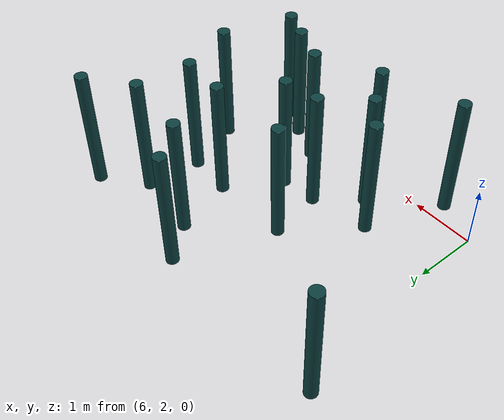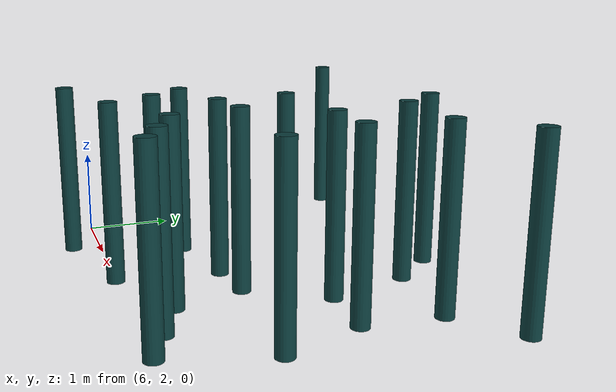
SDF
<sdf version="1.6">
 <world name="default">
  <model name="obstacle">
   <link name="link">
    <inertial>
     <mass>112.569</mass>
     <inertia><ixx>33.2512</ixx><ixy>0</ixy><ixz>0</ixz><iyy>33.2512</iyy><iyz>0</iyz><izz>0.537779</izz></inertia>
    </inertial>
    <visual name="visual">
     <geometry><cylinder><radius>0.1</radius><length>2</length></cylinder></geometry>
     <material>
      <script><name>Gazebo/Grey</name><uri>file://media/materials/scripts/gazebo.material</uri></script>
      <shader type="pixel"><normal_map>__default__</normal_map></shader>
      <ambient>0.05 0.25 0.25 1</ambient>
      <diffuse>0.3 0.3 0.3 1</diffuse>
      <specular>0.01 0.01 0.01 1</specular>
      <emissive>0.1 0.1 0.1 1</emissive>
      <lighting>1</lighting>
     </material>
    </visual>
    <collision name="collision">
     <geometry><cylinder><radius>0.097748</radius><length>1.87509</length></cylinder></geometry>
     <surface>
      <friction>
       <ode><mu>1</mu><mu2>1</mu2><fdir1>0 0 0</fdir1><slip1>0</slip1><slip2>0</slip2></ode>
       <torsional>
        <coefficient>1</coefficient>
        <patch_radius>0</patch_radius>
        <surface_radius>0</surface_radius>
        <use_patch_radius>1</use_patch_radius>
        <ode><slip>0</slip></ode>
       </torsional>
      </friction>
      <bounce><restitution_coefficient>0</restitution_coefficient><threshold>1e+06</threshold></bounce>
      <contact>
       <collide_without_contact>0</collide_without_contact>
       <collide_without_contact_bitmask>1</collide_without_contact_bitmask>
       <collide_bitmask>1</collide_bitmask>
       <ode>
        <soft_cfm>0</soft_cfm>
        <soft_erp>0.2</soft_erp>
        <kp>1e+13</kp>
        <kd>1</kd>
        <max_vel>0.01</max_vel>
        <min_depth>0</min_depth>
       </ode>
       <bullet>
        <split_impulse>1</split_impulse>
        <split_impulse_penetration_threshold>-0.01</split_impulse_penetration_threshold>
        <soft_cfm>0</soft_cfm>
        <soft_erp>0.2</soft_erp>
        <kp>1e+13</kp>
        <kd>1</kd>
       </bullet>
      </contact>
     </surface>
    </collision>
   </link>
   <static>0</static>
   <pose>8.74144 3.2167 0.987542 -6.2e-05 2.7e-05 0.009634</pose>
  </model>
  <model name="obstacle_clone">
   <link name="link">
    <inertial>
     <mass>112.569</mass>
     <inertia><ixx>33.2512</ixx><ixy>0</ixy><ixz>0</ixz><iyy>33.2512</iyy><iyz>0</iyz><izz>0.537779</izz></inertia>
    </inertial>
    <visual name="visual">
     <geometry><cylinder><radius>0.1</radius><length>2</length></cylinder></geometry>
     <material>
      <script><name>Gazebo/Grey</name><uri>file://media/materials/scripts/gazebo.material</uri></script>
      <shader type="pixel"><normal_map>__default__</normal_map></shader>
      <ambient>0.05 0.25 0.25 1</ambient>
      <diffuse>0.3 0.3 0.3 1</diffuse>
      <specular>0.01 0.01 0.01 1</specular>
      <emissive>0.1 0.1 0.1 1</emissive>
      <lighting>1</lighting>
     </material>
    </visual>
    <collision name="collision">
     <geometry><cylinder><radius>0.097748</radius><length>1.87509</length></cylinder></geometry>
     <surface>
      <friction>
       <ode><mu>1</mu><mu2>1</mu2><fdir1>0 0 0</fdir1><slip1>0</slip1><slip2>0</slip2></ode>
       <torsional>
        <coefficient>1</coefficient>
        <patch_radius>0</patch_radius>
        <surface_radius>0</surface_radius>
        <use_patch_radius>1</use_patch_radius>
        <ode><slip>0</slip></ode>
       </torsional>
      </friction>
      <bounce><restitution_coefficient>0</restitution_coefficient><threshold>1e+06</threshold></bounce>
      <contact>
       <collide_without_contact>0</collide_without_contact>
       <collide_without_contact_bitmask>1</collide_without_contact_bitmask>
       <collide_bitmask>1</collide_bitmask>
       <ode>
        <soft_cfm>0</soft_cfm>
        <soft_erp>0.2</soft_erp>
        <kp>1e+13</kp>
        <kd>1</kd>
        <max_vel>0.01</max_vel>
        <min_depth>0</min_depth>
       </ode>
       <bullet>
        <split_impulse>1</split_impulse>
        <split_impulse_penetration_threshold>-0.01</split_impulse_penetration_threshold>
        <soft_cfm>0</soft_cfm>
        <soft_erp>0.2</soft_erp>
        <kp>1e+13</kp>
        <kd>1</kd>
       </bullet>
      </contact>
     </surface>
    </collision>
   </link>
   <static>0</static>
   <pose>8.9966 5.00557 0.987541 -5.7e-05 2.5e-05 0.005717</pose>
  </model>
  <model name="obstacle_clone_1">
   <link name="link">
    <inertial>
     <mass>112.569</mass>
     <inertia><ixx>33.2512</ixx><ixy>0</ixy><ixz>0</ixz><iyy>33.2512</iyy><iyz>0</iyz><izz>0.537779</izz></inertia>
    </inertial>
    <visual name="visual">
     <geometry><cylinder><radius>0.1</radius><length>2</length></cylinder></geometry>
     <material>
      <script><name>Gazebo/Grey</name><uri>file://media/materials/scripts/gazebo.material</uri></script>
      <shader type="pixel"><normal_map>__default__</normal_map></shader>
      <ambient>0.05 0.25 0.25 1</ambient>
      <diffuse>0.3 0.3 0.3 1</diffuse>
      <specular>0.01 0.01 0.01 1</specular>
      <emissive>0.1 0.1 0.1 1</emissive>
      <lighting>1</lighting>
     </material>
    </visual>
    <collision name="collision">
     <geometry><cylinder><radius>0.097748</radius><length>1.87509</length></cylinder></geometry>
     <surface>
      <friction>
       <ode><mu>1</mu><mu2>1</mu2><fdir1>0 0 0</fdir1><slip1>0</slip1><slip2>0</slip2></ode>
       <torsional>
        <coefficient>1</coefficient>
        <patch_radius>0</patch_radius>
        <surface_radius>0</surface_radius>
        <use_patch_radius>1</use_patch_radius>
        <ode><slip>0</slip></ode>
       </torsional>
      </friction>
      <bounce><restitution_coefficient>0</restitution_coefficient><threshold>1e+06</threshold></bounce>
      <contact>
       <collide_without_contact>0</collide_without_contact>
       <collide_without_contact_bitmask>1</collide_without_contact_bitmask>
       <collide_bitmask>1</collide_bitmask>
       <ode>
        <soft_cfm>0</soft_cfm>
        <soft_erp>0.2</soft_erp>
        <kp>1e+13</kp>
        <kd>1</kd>
        <max_vel>0.01</max_vel>
        <min_depth>0</min_depth>
       </ode>
       <bullet>
        <split_impulse>1</split_impulse>
        <split_impulse_penetration_threshold>-0.01</split_impulse_penetration_threshold>
        <soft_cfm>0</soft_cfm>
        <soft_erp>0.2</soft_erp>
        <kp>1e+13</kp>
        <kd>1</kd>
       </bullet>
      </contact>
     </surface>
    </collision>
   </link>
   <static>0</static>
   <pose>5.64525 5.48252 0.987542 -5.6e-05 2.8e-05 0.013093</pose>
  </model>
  <model name="obstacle_clone_2">
   <link name="link">
    <inertial>
     <mass>112.569</mass>
     <inertia><ixx>33.2512</ixx><ixy>0</ixy><ixz>0</ixz><iyy>33.2512</iyy><iyz>0</iyz><izz>0.537779</izz></inertia>
    </inertial>
    <visual name="visual">
     <geometry><cylinder><radius>0.1</radius><length>2</length></cylinder></geometry>
     <material>
      <script><name>Gazebo/Grey</name><uri>file://media/materials/scripts/gazebo.material</uri></script>
      <shader type="pixel"><normal_map>__default__</normal_map></shader>
      <ambient>0.05 0.25 0.25 1</ambient>
      <diffuse>0.3 0.3 0.3 1</diffuse>
      <specular>0.01 0.01 0.01 1</specular>
      <emissive>0.1 0.1 0.1 1</emissive>
      <lighting>1</lighting>
     </material>
    </visual>
    <collision name="collision">
     <geometry><cylinder><radius>0.097748</radius><length>1.87509</length></cylinder></geometry>
     <surface>
      <friction>
       <ode><mu>1</mu><mu2>1</mu2><fdir1>0 0 0</fdir1><slip1>0</slip1><slip2>0</slip2></ode>
       <torsional>
        <coefficient>1</coefficient>
        <patch_radius>0</patch_radius>
        <surface_radius>0</surface_radius>
        <use_patch_radius>1</use_patch_radius>
        <ode><slip>0</slip></ode>
       </torsional>
      </friction>
      <bounce><restitution_coefficient>0</restitution_coefficient><threshold>1e+06</threshold></bounce>
      <contact>
       <collide_without_contact>0</collide_without_contact>
       <collide_without_contact_bitmask>1</collide_without_contact_bitmask>
       <collide_bitmask>1</collide_bitmask>
       <ode>
        <soft_cfm>0</soft_cfm>
        <soft_erp>0.2</soft_erp>
        <kp>1e+13</kp>
        <kd>1</kd>
        <max_vel>0.01</max_vel>
        <min_depth>0</min_depth>
       </ode>
       <bullet>
        <split_impulse>1</split_impulse>
        <split_impulse_penetration_threshold>-0.01</split_impulse_penetration_threshold>
        <soft_cfm>0</soft_cfm>
        <soft_erp>0.2</soft_erp>
        <kp>1e+13</kp>
        <kd>1</kd>
       </bullet>
      </contact>
     </surface>
    </collision>
   </link>
   <static>0</static>
   <pose>8.1539 3.14856 0.987543 -3e-05 1.1e-05 0.006568</pose>
  </model>
  <model name="obstacle_clone_4">
   <link name="link">
    <inertial>
     <mass>112.569</mass>
     <inertia><ixx>33.2512</ixx><ixy>0</ixy><ixz>0</ixz><iyy>33.2512</iyy><iyz>0</iyz><izz>0.537779</izz></inertia>
    </inertial>
    <visual name="visual">
     <geometry><cylinder><radius>0.1</radius><length>2</length></cylinder></geometry>
     <material>
      <script><name>Gazebo/Grey</name><uri>file://media/materials/scripts/gazebo.material</uri></script>
      <shader type="pixel"><normal_map>__default__</normal_map></shader>
      <ambient>0.05 0.25 0.25 1</ambient>
      <diffuse>0.3 0.3 0.3 1</diffuse>
      <specular>0.01 0.01 0.01 1</specular>
      <emissive>0.1 0.1 0.1 1</emissive>
      <lighting>1</lighting>
     </material>
    </visual>
    <collision name="collision">
     <geometry><cylinder><radius>0.097748</radius><length>1.87509</length></cylinder></geometry>
     <surface>
      <friction>
       <ode><mu>1</mu><mu2>1</mu2><fdir1>0 0 0</fdir1><slip1>0</slip1><slip2>0</slip2></ode>
       <torsional>
        <coefficient>1</coefficient>
        <patch_radius>0</patch_radius>
        <surface_radius>0</surface_radius>
        <use_patch_radius>1</use_patch_radius>
        <ode><slip>0</slip></ode>
       </torsional>
      </friction>
      <bounce><restitution_coefficient>0</restitution_coefficient><threshold>1e+06</threshold></bounce>
      <contact>
       <collide_without_contact>0</collide_without_contact>
       <collide_without_contact_bitmask>1</collide_without_contact_bitmask>
       <collide_bitmask>1</collide_bitmask>
       <ode>
        <soft_cfm>0</soft_cfm>
        <soft_erp>0.2</soft_erp>
        <kp>1e+13</kp>
        <kd>1</kd>
        <max_vel>0.01</max_vel>
        <min_depth>0</min_depth>
       </ode>
       <bullet>
        <split_impulse>1</split_impulse>
        <split_impulse_penetration_threshold>-0.01</split_impulse_penetration_threshold>
        <soft_cfm>0</soft_cfm>
        <soft_erp>0.2</soft_erp>
        <kp>1e+13</kp>
        <kd>1</kd>
       </bullet>
      </contact>
     </surface>
    </collision>
   </link>
   <static>0</static>
   <pose>6.72667 1.68942 0.98755 -5.4e-05 2.3e-05 0.012072</pose>
  </model>
  <model name="obstacle_clone_6">
   <link name="link">
    <inertial>
     <mass>112.569</mass>
     <inertia><ixx>33.2512</ixx><ixy>0</ixy><ixz>0</ixz><iyy>33.2512</iyy><iyz>0</iyz><izz>0.537779</izz></inertia>
    </inertial>
    <visual name="visual">
     <geometry><cylinder><radius>0.1</radius><length>2</length></cylinder></geometry>
     <material>
      <script><name>Gazebo/Grey</name><uri>file://media/materials/scripts/gazebo.material</uri></script>
      <shader type="pixel"><normal_map>__default__</normal_map></shader>
      <ambient>0.05 0.25 0.25 1</ambient>
      <diffuse>0.3 0.3 0.3 1</diffuse>
      <specular>0.01 0.01 0.01 1</specular>
      <emissive>0.1 0.1 0.1 1</emissive>
      <lighting>1</lighting>
     </material>
    </visual>
    <collision name="collision">
     <geometry><cylinder><radius>0.097748</radius><length>1.87509</length></cylinder></geometry>
     <surface>
      <friction>
       <ode><mu>1</mu><mu2>1</mu2><fdir1>0 0 0</fdir1><slip1>0</slip1><slip2>0</slip2></ode>
       <torsional>
        <coefficient>1</coefficient>
        <patch_radius>0</patch_radius>
        <surface_radius>0</surface_radius>
        <use_patch_radius>1</use_patch_radius>
        <ode><slip>0</slip></ode>
       </torsional>
      </friction>
      <bounce><restitution_coefficient>0</restitution_coefficient><threshold>1e+06</threshold></bounce>
      <contact>
       <collide_without_contact>0</collide_without_contact>
       <collide_without_contact_bitmask>1</collide_without_contact_bitmask>
       <collide_bitmask>1</collide_bitmask>
       <ode>
        <soft_cfm>0</soft_cfm>
        <soft_erp>0.2</soft_erp>
        <kp>1e+13</kp>
        <kd>1</kd>
        <max_vel>0.01</max_vel>
        <min_depth>0</min_depth>
       </ode>
       <bullet>
        <split_impulse>1</split_impulse>
        <split_impulse_penetration_threshold>-0.01</split_impulse_penetration_threshold>
        <soft_cfm>0</soft_cfm>
        <soft_erp>0.2</soft_erp>
        <kp>1e+13</kp>
        <kd>1</kd>
       </bullet>
      </contact>
     </surface>
    </collision>
   </link>
   <static>0</static>
   <pose>7.20032 2.95428 0.987551 -6.2e-05 2.7e-05 0.013572</pose>
  </model>
  <model name="obstacle_clone_7">
   <link name="link">
    <inertial>
     <mass>112.569</mass>
     <inertia><ixx>33.2512</ixx><ixy>0</ixy><ixz>0</ixz><iyy>33.2512</iyy><iyz>0</iyz><izz>0.537779</izz></inertia>
    </inertial>
    <visual name="visual">
     <geometry><cylinder><radius>0.1</radius><length>2</length></cylinder></geometry>
     <material>
      <script><name>Gazebo/Grey</name><uri>file://media/materials/scripts/gazebo.material</uri></script>
      <shader type="pixel"><normal_map>__default__</normal_map></shader>
      <ambient>0.05 0.25 0.25 1</ambient>
      <diffuse>0.3 0.3 0.3 1</diffuse>
      <specular>0.01 0.01 0.01 1</specular>
      <emissive>0.1 0.1 0.1 1</emissive>
      <lighting>1</lighting>
     </material>
    </visual>
    <collision name="collision">
     <geometry><cylinder><radius>0.097748</radius><length>1.87509</length></cylinder></geometry>
     <surface>
      <friction>
       <ode><mu>1</mu><mu2>1</mu2><fdir1>0 0 0</fdir1><slip1>0</slip1><slip2>0</slip2></ode>
       <torsional>
        <coefficient>1</coefficient>
        <patch_radius>0</patch_radius>
        <surface_radius>0</surface_radius>
        <use_patch_radius>1</use_patch_radius>
        <ode><slip>0</slip></ode>
       </torsional>
      </friction>
      <bounce><restitution_coefficient>0</restitution_coefficient><threshold>1e+06</threshold></bounce>
      <contact>
       <collide_without_contact>0</collide_without_contact>
       <collide_without_contact_bitmask>1</collide_without_contact_bitmask>
       <collide_bitmask>1</collide_bitmask>
       <ode>
        <soft_cfm>0</soft_cfm>
        <soft_erp>0.2</soft_erp>
        <kp>1e+13</kp>
        <kd>1</kd>
        <max_vel>0.01</max_vel>
        <min_depth>0</min_depth>
       </ode>
       <bullet>
        <split_impulse>1</split_impulse>
        <split_impulse_penetration_threshold>-0.01</split_impulse_penetration_threshold>
        <soft_cfm>0</soft_cfm>
        <soft_erp>0.2</soft_erp>
        <kp>1e+13</kp>
        <kd>1</kd>
       </bullet>
      </contact>
     </surface>
    </collision>
   </link>
   <static>0</static>
   <pose>8.97675 2.4352 0.987551 -5.4e-05 2.5e-05 0.018599</pose>
  </model>
  <model name="obstacle_clone_9">
   <link name="link">
    <inertial>
     <mass>112.569</mass>
     <inertia><ixx>33.2512</ixx><ixy>0</ixy><ixz>0</ixz><iyy>33.2512</iyy><iyz>0</iyz><izz>0.537779</izz></inertia>
    </inertial>
    <visual name="visual">
     <geometry><cylinder><radius>0.1</radius><length>2</length></cylinder></geometry>
     <material>
      <script><name>Gazebo/Grey</name><uri>file://media/materials/scripts/gazebo.material</uri></script>
      <shader type="pixel"><normal_map>__default__</normal_map></shader>
      <ambient>0.05 0.25 0.25 1</ambient>
      <diffuse>0.3 0.3 0.3 1</diffuse>
      <specular>0.01 0.01 0.01 1</specular>
      <emissive>0.1 0.1 0.1 1</emissive>
      <lighting>1</lighting>
     </material>
    </visual>
    <collision name="collision">
     <geometry><cylinder><radius>0.097748</radius><length>1.87509</length></cylinder></geometry>
     <surface>
      <friction>
       <ode><mu>1</mu><mu2>1</mu2><fdir1>0 0 0</fdir1><slip1>0</slip1><slip2>0</slip2></ode>
       <torsional>
        <coefficient>1</coefficient>
        <patch_radius>0</patch_radius>
        <surface_radius>0</surface_radius>
        <use_patch_radius>1</use_patch_radius>
        <ode><slip>0</slip></ode>
       </torsional>
      </friction>
      <bounce><restitution_coefficient>0</restitution_coefficient><threshold>1e+06</threshold></bounce>
      <contact>
       <collide_without_contact>0</collide_without_contact>
       <collide_without_contact_bitmask>1</collide_without_contact_bitmask>
       <collide_bitmask>1</collide_bitmask>
       <ode>
        <soft_cfm>0</soft_cfm>
        <soft_erp>0.2</soft_erp>
        <kp>1e+13</kp>
        <kd>1</kd>
        <max_vel>0.01</max_vel>
        <min_depth>0</min_depth>
       </ode>
       <bullet>
        <split_impulse>1</split_impulse>
        <split_impulse_penetration_threshold>-0.01</split_impulse_penetration_threshold>
        <soft_cfm>0</soft_cfm>
        <soft_erp>0.2</soft_erp>
        <kp>1e+13</kp>
        <kd>1</kd>
       </bullet>
      </contact>
     </surface>
    </collision>
   </link>
   <static>0</static>
   <pose>8.00024 4.00006 0.987551 -5.9e-05 2.7e-05 0.107239</pose>
  </model>
  <model name="obstacle_clone_10">
   <link name="link">
    <inertial>
     <mass>112.569</mass>
     <inertia><ixx>33.2512</ixx><ixy>0</ixy><ixz>0</ixz><iyy>33.2512</iyy><iyz>0</iyz><izz>0.537779</izz></inertia>
    </inertial>
    <visual name="visual">
     <geometry><cylinder><radius>0.1</radius><length>2</length></cylinder></geometry>
     <material>
      <script><name>Gazebo/Grey</name><uri>file://media/materials/scripts/gazebo.material</uri></script>
      <shader type="pixel"><normal_map>__default__</normal_map></shader>
      <ambient>0.05 0.25 0.25 1</ambient>
      <diffuse>0.3 0.3 0.3 1</diffuse>
      <specular>0.01 0.01 0.01 1</specular>
      <emissive>0.1 0.1 0.1 1</emissive>
      <lighting>1</lighting>
     </material>
    </visual>
    <collision name="collision">
     <geometry><cylinder><radius>0.097748</radius><length>1.87509</length></cylinder></geometry>
     <surface>
      <friction>
       <ode><mu>1</mu><mu2>1</mu2><fdir1>0 0 0</fdir1><slip1>0</slip1><slip2>0</slip2></ode>
       <torsional>
        <coefficient>1</coefficient>
        <patch_radius>0</patch_radius>
        <surface_radius>0</surface_radius>
        <use_patch_radius>1</use_patch_radius>
        <ode><slip>0</slip></ode>
       </torsional>
      </friction>
      <bounce><restitution_coefficient>0</restitution_coefficient><threshold>1e+06</threshold></bounce>
      <contact>
       <collide_without_contact>0</collide_without_contact>
       <collide_without_contact_bitmask>1</collide_without_contact_bitmask>
       <collide_bitmask>1</collide_bitmask>
       <ode>
        <soft_cfm>0</soft_cfm>
        <soft_erp>0.2</soft_erp>
        <kp>1e+13</kp>
        <kd>1</kd>
        <max_vel>0.01</max_vel>
        <min_depth>0</min_depth>
       </ode>
       <bullet>
        <split_impulse>1</split_impulse>
        <split_impulse_penetration_threshold>-0.01</split_impulse_penetration_threshold>
        <soft_cfm>0</soft_cfm>
        <soft_erp>0.2</soft_erp>
        <kp>1e+13</kp>
        <kd>1</kd>
       </bullet>
      </contact>
     </surface>
    </collision>
   </link>
   <static>0</static>
   <pose>9.27573 4.05112 0.987541 -5.6e-05 2.7e-05 0.010932</pose>
  </model>
  <model name="obstacle_clone_11">
   <link name="link">
    <inertial>
     <mass>112.569</mass>
     <inertia><ixx>33.2512</ixx><ixy>0</ixy><ixz>0</ixz><iyy>33.2512</iyy><iyz>0</iyz><izz>0.537779</izz></inertia>
    </inertial>
    <visual name="visual">
     <geometry><cylinder><radius>0.1</radius><length>2</length></cylinder></geometry>
     <material>
      <script><name>Gazebo/Grey</name><uri>file://media/materials/scripts/gazebo.material</uri></script>
      <shader type="pixel"><normal_map>__default__</normal_map></shader>
      <ambient>0.05 0.25 0.25 1</ambient>
      <diffuse>0.3 0.3 0.3 1</diffuse>
      <specular>0.01 0.01 0.01 1</specular>
      <emissive>0.1 0.1 0.1 1</emissive>
      <lighting>1</lighting>
     </material>
    </visual>
    <collision name="collision">
     <geometry><cylinder><radius>0.097748</radius><length>1.87509</length></cylinder></geometry>
     <surface>
      <friction>
       <ode><mu>1</mu><mu2>1</mu2><fdir1>0 0 0</fdir1><slip1>0</slip1><slip2>0</slip2></ode>
       <torsional>
        <coefficient>1</coefficient>
        <patch_radius>0</patch_radius>
        <surface_radius>0</surface_radius>
        <use_patch_radius>1</use_patch_radius>
        <ode><slip>0</slip></ode>
       </torsional>
      </friction>
      <bounce><restitution_coefficient>0</restitution_coefficient><threshold>1e+06</threshold></bounce>
      <contact>
       <collide_without_contact>0</collide_without_contact>
       <collide_without_contact_bitmask>1</collide_without_contact_bitmask>
       <collide_bitmask>1</collide_bitmask>
       <ode>
        <soft_cfm>0</soft_cfm>
        <soft_erp>0.2</soft_erp>
        <kp>1e+13</kp>
        <kd>1</kd>
        <max_vel>0.01</max_vel>
        <min_depth>0</min_depth>
       </ode>
       <bullet>
        <split_impulse>1</split_impulse>
        <split_impulse_penetration_threshold>-0.01</split_impulse_penetration_threshold>
        <soft_cfm>0</soft_cfm>
        <soft_erp>0.2</soft_erp>
        <kp>1e+13</kp>
        <kd>1</kd>
       </bullet>
      </contact>
     </surface>
    </collision>
   </link>
   <static>0</static>
   <pose>10.7413 5.39213 0.987542 -5.8e-05 2.5e-05 0.014221</pose>
  </model>
  <model name="obstacle_clone_12">
   <link name="link">
    <inertial>
     <mass>112.569</mass>
     <inertia><ixx>33.2512</ixx><ixy>0</ixy><ixz>0</ixz><iyy>33.2512</iyy><iyz>0</iyz><izz>0.537779</izz></inertia>
    </inertial>
    <visual name="visual">
     <geometry><cylinder><radius>0.1</radius><length>2</length></cylinder></geometry>
     <material>
      <script><name>Gazebo/Grey</name><uri>file://media/materials/scripts/gazebo.material</uri></script>
      <shader type="pixel"><normal_map>__default__</normal_map></shader>
      <ambient>0.05 0.25 0.25 1</ambient>
      <diffuse>0.3 0.3 0.3 1</diffuse>
      <specular>0.01 0.01 0.01 1</specular>
      <emissive>0.1 0.1 0.1 1</emissive>
      <lighting>1</lighting>
     </material>
    </visual>
    <collision name="collision">
     <geometry><cylinder><radius>0.097748</radius><length>1.87509</length></cylinder></geometry>
     <surface>
      <friction>
       <ode><mu>1</mu><mu2>1</mu2><fdir1>0 0 0</fdir1><slip1>0</slip1><slip2>0</slip2></ode>
       <torsional>
        <coefficient>1</coefficient>
        <patch_radius>0</patch_radius>
        <surface_radius>0</surface_radius>
        <use_patch_radius>1</use_patch_radius>
        <ode><slip>0</slip></ode>
       </torsional>
      </friction>
      <bounce><restitution_coefficient>0</restitution_coefficient><threshold>1e+06</threshold></bounce>
      <contact>
       <collide_without_contact>0</collide_without_contact>
       <collide_without_contact_bitmask>1</collide_without_contact_bitmask>
       <collide_bitmask>1</collide_bitmask>
       <ode>
        <soft_cfm>0</soft_cfm>
        <soft_erp>0.2</soft_erp>
        <kp>1e+13</kp>
        <kd>1</kd>
        <max_vel>0.01</max_vel>
        <min_depth>0</min_depth>
       </ode>
       <bullet>
        <split_impulse>1</split_impulse>
        <split_impulse_penetration_threshold>-0.01</split_impulse_penetration_threshold>
        <soft_cfm>0</soft_cfm>
        <soft_erp>0.2</soft_erp>
        <kp>1e+13</kp>
        <kd>1</kd>
       </bullet>
      </contact>
     </surface>
    </collision>
   </link>
   <static>0</static>
   <pose>10.0737 4.88615 0.987552 -6.3e-05 2.9e-05 0.027325</pose>
  </model>
  <model name="obstacle_clone_14">
   <link name="link">
    <inertial>
     <mass>112.569</mass>
     <inertia><ixx>33.2512</ixx><ixy>0</ixy><ixz>0</ixz><iyy>33.2512</iyy><iyz>0</iyz><izz>0.537779</izz></inertia>
    </inertial>
    <visual name="visual">
     <geometry><cylinder><radius>0.1</radius><length>2</length></cylinder></geometry>
     <material>
      <script><name>Gazebo/Grey</name><uri>file://media/materials/scripts/gazebo.material</uri></script>
      <shader type="pixel"><normal_map>__default__</normal_map></shader>
      <ambient>0.05 0.25 0.25 1</ambient>
      <diffuse>0.3 0.3 0.3 1</diffuse>
      <specular>0.01 0.01 0.01 1</specular>
      <emissive>0.1 0.1 0.1 1</emissive>
      <lighting>1</lighting>
     </material>
    </visual>
    <collision name="collision">
     <geometry><cylinder><radius>0.097748</radius><length>1.87509</length></cylinder></geometry>
     <surface>
      <friction>
       <ode><mu>1</mu><mu2>1</mu2><fdir1>0 0 0</fdir1><slip1>0</slip1><slip2>0</slip2></ode>
       <torsional>
        <coefficient>1</coefficient>
        <patch_radius>0</patch_radius>
        <surface_radius>0</surface_radius>
        <use_patch_radius>1</use_patch_radius>
        <ode><slip>0</slip></ode>
       </torsional>
      </friction>
      <bounce><restitution_coefficient>0</restitution_coefficient><threshold>1e+06</threshold></bounce>
      <contact>
       <collide_without_contact>0</collide_without_contact>
       <collide_without_contact_bitmask>1</collide_without_contact_bitmask>
       <collide_bitmask>1</collide_bitmask>
       <ode>
        <soft_cfm>0</soft_cfm>
        <soft_erp>0.2</soft_erp>
        <kp>1e+13</kp>
        <kd>1</kd>
        <max_vel>0.01</max_vel>
        <min_depth>0</min_depth>
       </ode>
       <bullet>
        <split_impulse>1</split_impulse>
        <split_impulse_penetration_threshold>-0.01</split_impulse_penetration_threshold>
        <soft_cfm>0</soft_cfm>
        <soft_erp>0.2</soft_erp>
        <kp>1e+13</kp>
        <kd>1</kd>
       </bullet>
      </contact>
     </surface>
    </collision>
   </link>
   <static>0</static>
   <pose>9.54472 2.19231 0.987541 -5.4e-05 2.5e-05 0.01377</pose>
  </model>
  <model name="obstacle_clone_15">
   <link name="link">
    <inertial>
     <mass>112.569</mass>
     <inertia><ixx>33.2512</ixx><ixy>0</ixy><ixz>0</ixz><iyy>33.2512</iyy><iyz>0</iyz><izz>0.537779</izz></inertia>
    </inertial>
    <visual name="visual">
     <geometry><cylinder><radius>0.1</radius><length>2</length></cylinder></geometry>
     <material>
      <script><name>Gazebo/Grey</name><uri>file://media/materials/scripts/gazebo.material</uri></script>
      <shader type="pixel"><normal_map>__default__</normal_map></shader>
      <ambient>0.05 0.25 0.25 1</ambient>
      <diffuse>0.3 0.3 0.3 1</diffuse>
      <specular>0.01 0.01 0.01 1</specular>
      <emissive>0.1 0.1 0.1 1</emissive>
      <lighting>1</lighting>
     </material>
    </visual>
    <collision name="collision">
     <geometry><cylinder><radius>0.097748</radius><length>1.87509</length></cylinder></geometry>
     <surface>
      <friction>
       <ode><mu>1</mu><mu2>1</mu2><fdir1>0 0 0</fdir1><slip1>0</slip1><slip2>0</slip2></ode>
       <torsional>
        <coefficient>1</coefficient>
        <patch_radius>0</patch_radius>
        <surface_radius>0</surface_radius>
        <use_patch_radius>1</use_patch_radius>
        <ode><slip>0</slip></ode>
       </torsional>
      </friction>
      <bounce><restitution_coefficient>0</restitution_coefficient><threshold>1e+06</threshold></bounce>
      <contact>
       <collide_without_contact>0</collide_without_contact>
       <collide_without_contact_bitmask>1</collide_without_contact_bitmask>
       <collide_bitmask>1</collide_bitmask>
       <ode>
        <soft_cfm>0</soft_cfm>
        <soft_erp>0.2</soft_erp>
        <kp>1e+13</kp>
        <kd>1</kd>
        <max_vel>0.01</max_vel>
        <min_depth>0</min_depth>
       </ode>
       <bullet>
        <split_impulse>1</split_impulse>
        <split_impulse_penetration_threshold>-0.01</split_impulse_penetration_threshold>
        <soft_cfm>0</soft_cfm>
        <soft_erp>0.2</soft_erp>
        <kp>1e+13</kp>
        <kd>1</kd>
       </bullet>
      </contact>
     </surface>
    </collision>
   </link>
   <static>0</static>
   <pose>10.0002 4.00003 0.987542 -6.3e-05 2.8e-05 0.020264</pose>
  </model>
  <model name="obstacle_clone_23">
   <link name="link">
    <inertial>
     <mass>112.569</mass>
     <inertia><ixx>33.2512</ixx><ixy>0</ixy><ixz>0</ixz><iyy>33.2512</iyy><iyz>0</iyz><izz>0.537779</izz></inertia>
    </inertial>
    <visual name="visual">
     <geometry><cylinder><radius>0.1</radius><length>2</length></cylinder></geometry>
     <material>
      <script><name>Gazebo/Grey</name><uri>file://media/materials/scripts/gazebo.material</uri></script>
      <shader type="pixel"><normal_map>__default__</normal_map></shader>
      <ambient>0.05 0.25 0.25 1</ambient>
      <diffuse>0.3 0.3 0.3 1</diffuse>
      <specular>0.01 0.01 0.01 1</specular>
      <emissive>0.1 0.1 0.1 1</emissive>
      <lighting>1</lighting>
     </material>
    </visual>
    <collision name="collision">
     <geometry><cylinder><radius>0.097748</radius><length>1.87509</length></cylinder></geometry>
     <surface>
      <friction>
       <ode><mu>1</mu><mu2>1</mu2><fdir1>0 0 0</fdir1><slip1>0</slip1><slip2>0</slip2></ode>
       <torsional>
        <coefficient>1</coefficient>
        <patch_radius>0</patch_radius>
        <surface_radius>0</surface_radius>
        <use_patch_radius>1</use_patch_radius>
        <ode><slip>0</slip></ode>
       </torsional>
      </friction>
      <bounce><restitution_coefficient>0</restitution_coefficient><threshold>1e+06</threshold></bounce>
      <contact>
       <collide_without_contact>0</collide_without_contact>
       <collide_without_contact_bitmask>1</collide_without_contact_bitmask>
       <collide_bitmask>1</collide_bitmask>
       <ode>
        <soft_cfm>0</soft_cfm>
        <soft_erp>0.2</soft_erp>
        <kp>1e+13</kp>
        <kd>1</kd>
        <max_vel>0.01</max_vel>
        <min_depth>0</min_depth>
       </ode>
       <bullet>
        <split_impulse>1</split_impulse>
        <split_impulse_penetration_threshold>-0.01</split_impulse_penetration_threshold>
        <soft_cfm>0</soft_cfm>
        <soft_erp>0.2</soft_erp>
        <kp>1e+13</kp>
        <kd>1</kd>
       </bullet>
      </contact>
     </surface>
    </collision>
   </link>
   <static>0</static>
   <pose>8.00027 2.00004 0.987541 -5e-05 2.4e-05 0.013388</pose>
  </model>
  <model name="obstacle_clone_24">
   <link name="link">
    <inertial>
     <mass>112.569</mass>
     <inertia><ixx>33.2512</ixx><ixy>0</ixy><ixz>0</ixz><iyy>33.2512</iyy><iyz>0</iyz><izz>0.537779</izz></inertia>
    </inertial>
    <visual name="visual">
     <geometry><cylinder><radius>0.1</radius><length>2</length></cylinder></geometry>
     <material>
      <script><name>Gazebo/Grey</name><uri>file://media/materials/scripts/gazebo.material</uri></script>
      <shader type="pixel"><normal_map>__default__</normal_map></shader>
      <ambient>0.05 0.25 0.25 1</ambient>
      <diffuse>0.3 0.3 0.3 1</diffuse>
      <specular>0.01 0.01 0.01 1</specular>
      <emissive>0.1 0.1 0.1 1</emissive>
      <lighting>1</lighting>
     </material>
    </visual>
    <collision name="collision">
     <geometry><cylinder><radius>0.097748</radius><length>1.87509</length></cylinder></geometry>
     <surface>
      <friction>
       <ode><mu>1</mu><mu2>1</mu2><fdir1>0 0 0</fdir1><slip1>0</slip1><slip2>0</slip2></ode>
       <torsional>
        <coefficient>1</coefficient>
        <patch_radius>0</patch_radius>
        <surface_radius>0</surface_radius>
        <use_patch_radius>1</use_patch_radius>
        <ode><slip>0</slip></ode>
       </torsional>
      </friction>
      <bounce><restitution_coefficient>0</restitution_coefficient><threshold>1e+06</threshold></bounce>
      <contact>
       <collide_without_contact>0</collide_without_contact>
       <collide_without_contact_bitmask>1</collide_without_contact_bitmask>
       <collide_bitmask>1</collide_bitmask>
       <ode>
        <soft_cfm>0</soft_cfm>
        <soft_erp>0.2</soft_erp>
        <kp>1e+13</kp>
        <kd>1</kd>
        <max_vel>0.01</max_vel>
        <min_depth>0</min_depth>
       </ode>
       <bullet>
        <split_impulse>1</split_impulse>
        <split_impulse_penetration_threshold>-0.01</split_impulse_penetration_threshold>
        <soft_cfm>0</soft_cfm>
        <soft_erp>0.2</soft_erp>
        <kp>1e+13</kp>
        <kd>1</kd>
       </bullet>
      </contact>
     </surface>
    </collision>
   </link>
   <static>0</static>
   <pose>10.0003 2.00004 0.987551 -6.2e-05 2.9e-05 0.013744</pose>
  </model>
  <model name="obstacle_clone_26">
   <link name="link">
    <inertial>
     <mass>112.569</mass>
     <inertia><ixx>33.2512</ixx><ixy>0</ixy><ixz>0</ixz><iyy>33.2512</iyy><iyz>0</iyz><izz>0.537779</izz></inertia>
    </inertial>
    <visual name="visual">
     <geometry><cylinder><radius>0.1</radius><length>2</length></cylinder></geometry>
     <material>
      <script><name>Gazebo/Grey</name><uri>file://media/materials/scripts/gazebo.material</uri></script>
      <shader type="pixel"><normal_map>__default__</normal_map></shader>
      <ambient>0.05 0.25 0.25 1</ambient>
      <diffuse>0.3 0.3 0.3 1</diffuse>
      <specular>0.01 0.01 0.01 1</specular>
      <emissive>0.1 0.1 0.1 1</emissive>
      <lighting>1</lighting>
     </material>
    </visual>
    <collision name="collision">
     <geometry><cylinder><radius>0.097748</radius><length>1.87509</length></cylinder></geometry>
     <surface>
      <friction>
       <ode><mu>1</mu><mu2>1</mu2><fdir1>0 0 0</fdir1><slip1>0</slip1><slip2>0</slip2></ode>
       <torsional>
        <coefficient>1</coefficient>
        <patch_radius>0</patch_radius>
        <surface_radius>0</surface_radius>
        <use_patch_radius>1</use_patch_radius>
        <ode><slip>0</slip></ode>
       </torsional>
      </friction>
      <bounce><restitution_coefficient>0</restitution_coefficient><threshold>1e+06</threshold></bounce>
      <contact>
       <collide_without_contact>0</collide_without_contact>
       <collide_without_contact_bitmask>1</collide_without_contact_bitmask>
       <collide_bitmask>1</collide_bitmask>
       <ode>
        <soft_cfm>0</soft_cfm>
        <soft_erp>0.2</soft_erp>
        <kp>1e+13</kp>
        <kd>1</kd>
        <max_vel>0.01</max_vel>
        <min_depth>0</min_depth>
       </ode>
       <bullet>
        <split_impulse>1</split_impulse>
        <split_impulse_penetration_threshold>-0.01</split_impulse_penetration_threshold>
        <soft_cfm>0</soft_cfm>
        <soft_erp>0.2</soft_erp>
        <kp>1e+13</kp>
        <kd>1</kd>
       </bullet>
      </contact>
     </surface>
    </collision>
   </link>
   <static>0</static>
   <pose>10.3295 3.10325 0.987541 -5.3e-05 2.4e-05 0.01339</pose>
  </model>
  <model name="obstacle_clone_27">
   <link name="link">
    <inertial>
     <mass>112.569</mass>
     <inertia><ixx>33.2512</ixx><ixy>0</ixy><ixz>0</ixz><iyy>33.2512</iyy><iyz>0</iyz><izz>0.537779</izz></inertia>
    </inertial>
    <visual name="visual">
     <geometry><cylinder><radius>0.1</radius><length>2</length></cylinder></geometry>
     <material>
      <script><name>Gazebo/Grey</name><uri>file://media/materials/scripts/gazebo.material</uri></script>
      <shader type="pixel"><normal_map>__default__</normal_map></shader>
      <ambient>0.05 0.25 0.25 1</ambient>
      <diffuse>0.3 0.3 0.3 1</diffuse>
      <specular>0.01 0.01 0.01 1</specular>
      <emissive>0.1 0.1 0.1 1</emissive>
      <lighting>1</lighting>
     </material>
    </visual>
    <collision name="collision">
     <geometry><cylinder><radius>0.097748</radius><length>1.87509</length></cylinder></geometry>
     <surface>
      <friction>
       <ode><mu>1</mu><mu2>1</mu2><fdir1>0 0 0</fdir1><slip1>0</slip1><slip2>0</slip2></ode>
       <torsional>
        <coefficient>1</coefficient>
        <patch_radius>0</patch_radius>
        <surface_radius>0</surface_radius>
        <use_patch_radius>1</use_patch_radius>
        <ode><slip>0</slip></ode>
       </torsional>
      </friction>
      <bounce><restitution_coefficient>0</restitution_coefficient><threshold>1e+06</threshold></bounce>
      <contact>
       <collide_without_contact>0</collide_without_contact>
       <collide_without_contact_bitmask>1</collide_without_contact_bitmask>
       <collide_bitmask>1</collide_bitmask>
       <ode>
        <soft_cfm>0</soft_cfm>
        <soft_erp>0.2</soft_erp>
        <kp>1e+13</kp>
        <kd>1</kd>
        <max_vel>0.01</max_vel>
        <min_depth>0</min_depth>
       </ode>
       <bullet>
        <split_impulse>1</split_impulse>
        <split_impulse_penetration_threshold>-0.01</split_impulse_penetration_threshold>
        <soft_cfm>0</soft_cfm>
        <soft_erp>0.2</soft_erp>
        <kp>1e+13</kp>
        <kd>1</kd>
       </bullet>
      </contact>
     </surface>
    </collision>
   </link>
   <static>0</static>
   <pose>8.56108 5.52815 0.987543 -2.8e-05 1.2e-05 0.007252</pose>
  </model>
  <model name="obstacle_clone_30">
   <link name="link">
    <inertial>
     <mass>112.569</mass>
     <inertia><ixx>33.2512</ixx><ixy>0</ixy><ixz>0</ixz><iyy>33.2512</iyy><iyz>0</iyz><izz>0.537779</izz></inertia>
    </inertial>
    <visual name="visual">
     <geometry><cylinder><radius>0.1</radius><length>2</length></cylinder></geometry>
     <material>
      <script><name>Gazebo/Grey</name><uri>file://media/materials/scripts/gazebo.material</uri></script>
      <shader type="pixel"><normal_map>__default__</normal_map></shader>
      <ambient>0.05 0.25 0.25 1</ambient>
      <diffuse>0.3 0.3 0.3 1</diffuse>
      <specular>0.01 0.01 0.01 1</specular>
      <emissive>0.1 0.1 0.1 1</emissive>
      <lighting>1</lighting>
     </material>
    </visual>
    <collision name="collision">
     <geometry><cylinder><radius>0.097748</radius><length>1.87509</length></cylinder></geometry>
     <surface>
      <friction>
       <ode><mu>1</mu><mu2>1</mu2><fdir1>0 0 0</fdir1><slip1>0</slip1><slip2>0</slip2></ode>
       <torsional>
        <coefficient>1</coefficient>
        <patch_radius>0</patch_radius>
        <surface_radius>0</surface_radius>
        <use_patch_radius>1</use_patch_radius>
        <ode><slip>0</slip></ode>
       </torsional>
      </friction>
      <bounce><restitution_coefficient>0</restitution_coefficient><threshold>1e+06</threshold></bounce>
      <contact>
       <collide_without_contact>0</collide_without_contact>
       <collide_without_contact_bitmask>1</collide_without_contact_bitmask>
       <collide_bitmask>1</collide_bitmask>
       <ode>
        <soft_cfm>0</soft_cfm>
        <soft_erp>0.2</soft_erp>
        <kp>1e+13</kp>
        <kd>1</kd>
        <max_vel>0.01</max_vel>
        <min_depth>0</min_depth>
       </ode>
       <bullet>
        <split_impulse>1</split_impulse>
        <split_impulse_penetration_threshold>-0.01</split_impulse_penetration_threshold>
        <soft_cfm>0</soft_cfm>
        <soft_erp>0.2</soft_erp>
        <kp>1e+13</kp>
        <kd>1</kd>
       </bullet>
      </contact>
     </surface>
    </collision>
   </link>
   <static>0</static>
   <pose>7.61118 2.54416 0.987551 -6e-05 2.8e-05 0.013142</pose>
  </model>
 </world>
</sdf>
